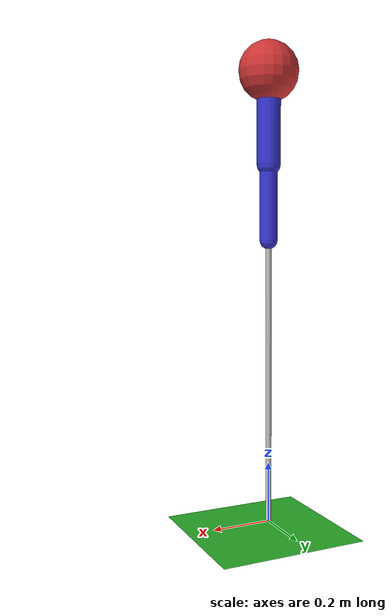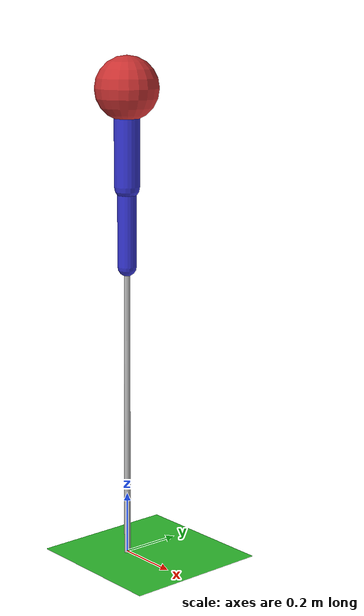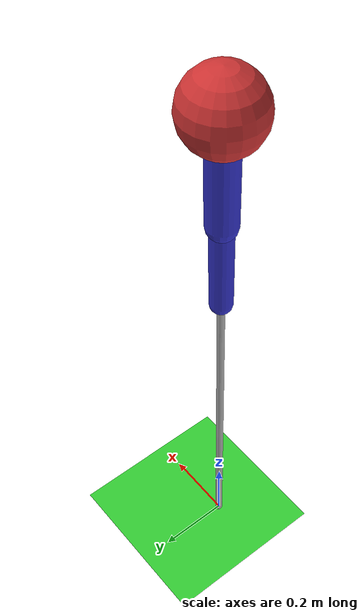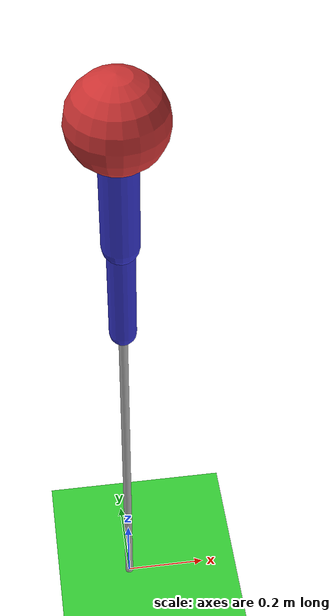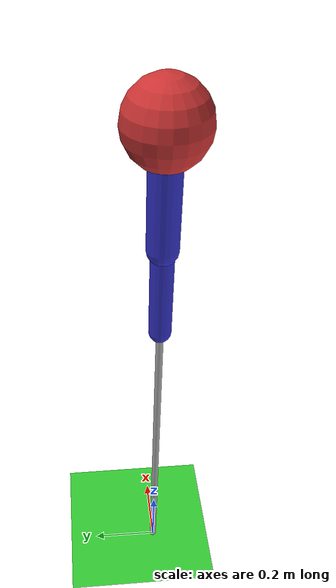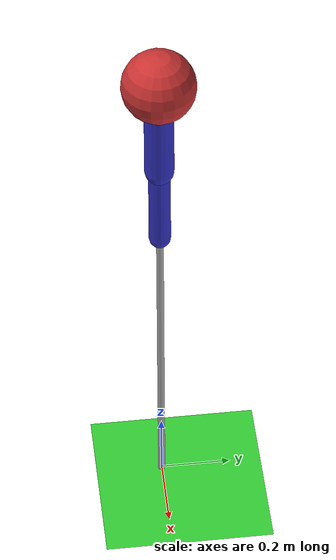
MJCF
<mujoco model="golf_swing_simplified">
  <compiler angle="degree" coordinate="local" inertiafromgeom="true"/>
  <option timestep="0.002" gravity="0 0 -9.81"/>

  <visual>
    <headlight ambient="0.4 0.4 0.4" diffuse="0.8 0.8 0.8" specular="0.1 0.1 0.1"/>
    <map fogstart="3" fogend="10"/>
    <quality shadowsize="2048"/>
  </visual>

  <default>
    <geom conaffinity="1" condim="3" friction="1 0.5 0.5" solref="0.02 1" solimp="0.9 0.95 0.001"/>
    <joint stiffness="0" damping="0.1" armature="0.01"/>
  </default>

  <worldbody>
    <light pos="0 0 3" dir="0 0 -1" directional="true"/>
    <geom name="floor" type="plane" size="5 5 0.1" rgba="0.2 0.8 0.2 1"/>

    <!-- Torso / Shoulder anchor -->
    <body name="torso" pos="0 0 1.5">
      <geom type="sphere" size="0.1" rgba="0.8 0.2 0.2 1"/>

      <!-- Upper Arm -->
      <body name="upper_arm" pos="0 0 0">
        <joint name="shoulder_joint" type="hinge" axis="0 1 0" range="-180 180" damping="1.0"/>
        <geom type="capsule" fromto="0 0 0 0 0 -0.3" size="0.04" rgba="0.2 0.2 0.8 1"/>

        <!-- Forearm -->
        <body name="forearm" pos="0 0 -0.3">
          <joint name="elbow_joint" type="hinge" axis="0 1 0" range="-150 0" damping="1.0"/>
          <geom type="capsule" fromto="0 0 0 0 0 -0.25" size="0.03" rgba="0.2 0.2 0.8 1"/>

          <!-- Club -->
          <body name="club" pos="0 0 -0.25">
             <joint name="wrist_joint" type="hinge" axis="0 1 0" range="-90 90" damping="0.5"/>
             <!-- Shaft -->
             <geom type="cylinder" fromto="0 0 0 0 0 -1.0" size="0.01" rgba="0.7 0.7 0.7 1"/>
             <!-- Club Head -->
             <body name="club_head" pos="0 0 -1.0">
                <geom type="box" size="0.05 0.02 0.03" rgba="0.3 0.3 0.3 1"/>
             </body>
          </body>
        </body>
      </body>
    </body>
  </worldbody>

  <actuator>
    <motor name="shoulder_motor" joint="shoulder_joint" gear="100"/>
    <motor name="elbow_motor" joint="elbow_joint" gear="50"/>
    <motor name="wrist_motor" joint="wrist_joint" gear="20"/>
  </actuator>
</mujoco>
